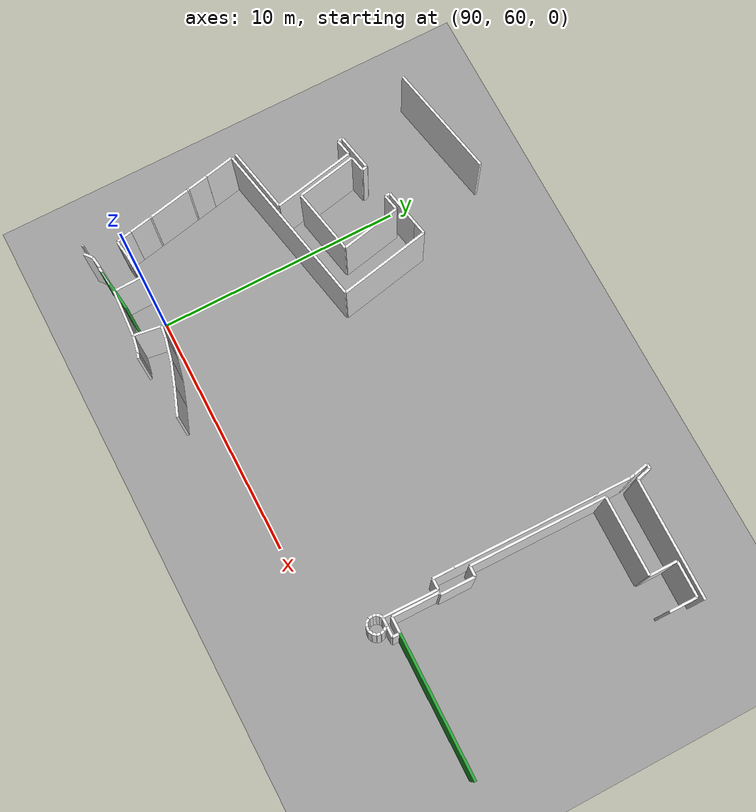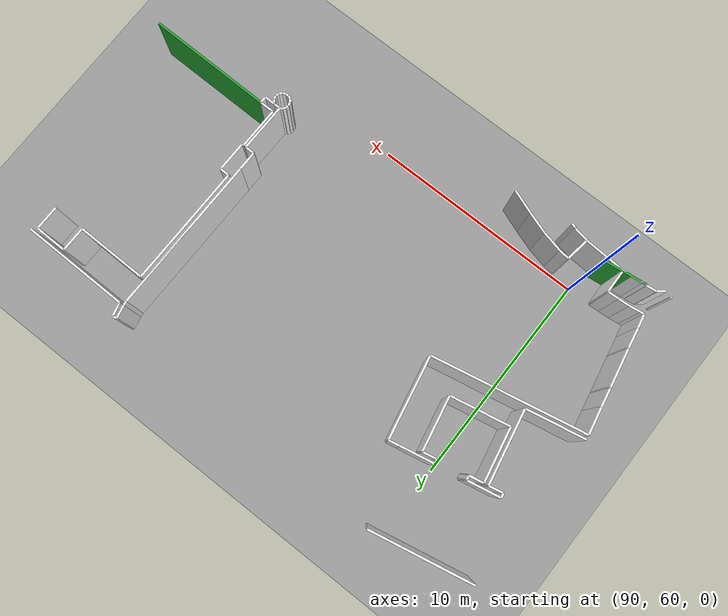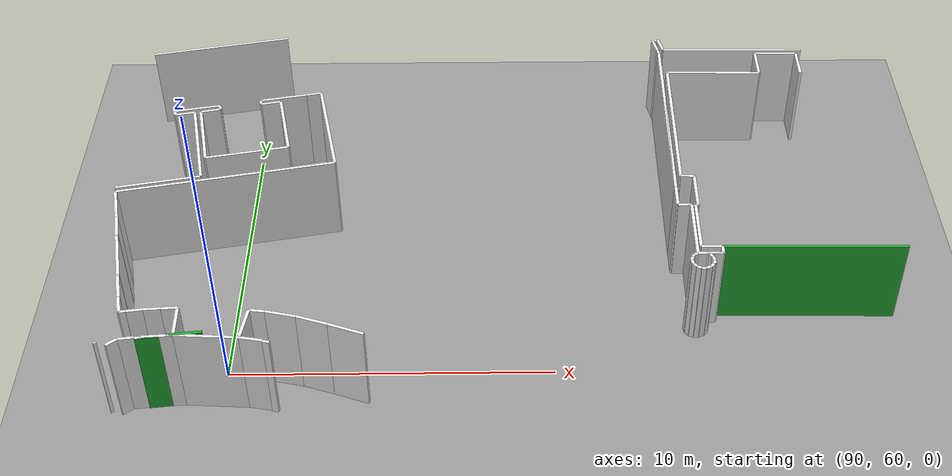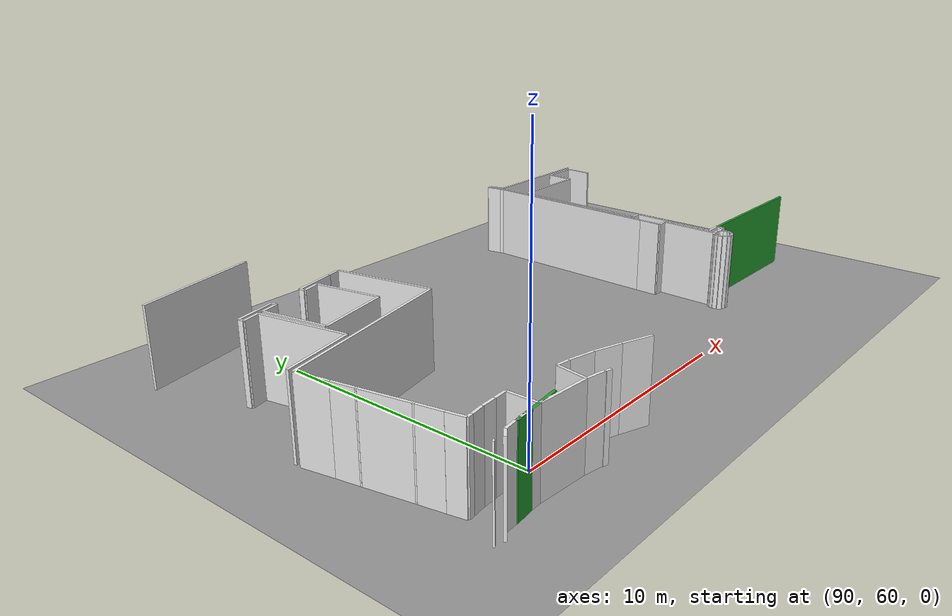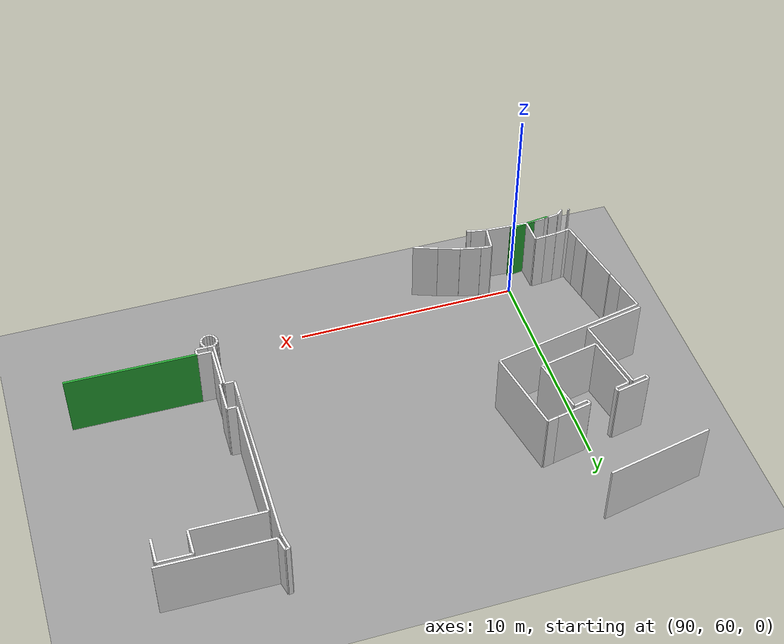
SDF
<sdf version="1.6">
 <world name="default">
  <model name="wall_108.0_62.3_1.5">
   <static>true</static>
   <pose>107.99499999999534 62.34499999997206 1.5 0 0 -0.012258580285916719</pose>
   <link name="link">
    <visual name="visual">
     <geometry><box><size>5.710429055644689 0.1 3</size></box></geometry>
     <material>
      <script><uri>file://media/materials/scripts/gazebo.material</uri><name>Gazebo/Green</name></script>
     </material>
    </visual>
    <collision name="collision"><geometry><box><size>5.710429055644689 0.1 3</size></box></geometry></collision>
   </link>
  </model>
  <model name="wall_88.8_58.8_1.5">
   <static>true</static>
   <pose>88.77500000008149 58.84499999997206 1.5 0 0 0.11984180789177595</pose>
   <link name="link">
    <visual name="visual">
     <geometry><box><size>1.9237983263743257 0.1 3</size></box></geometry>
     <material>
      <script><uri>file://media/materials/scripts/gazebo.material</uri><name>Gazebo/Green</name></script>
     </material>
    </visual>
    <collision name="collision"><geometry><box><size>1.9237983263743257 0.1 3</size></box></geometry></collision>
   </link>
  </model>
  <model name="wall_104.2_72.9_1.5">
   <static>true</static>
   <pose>104.17999999999302 72.9000000001397 1.5 0 0 -1.3415643935301684</pose>
   <link name="link">
    <visual name="visual">
     <geometry><box><size>0.6161168721238449 0.1 3</size></box></geometry>
     <material>
      <script><uri>file://media/materials/scripts/gazebo.material</uri><name>Gazebo/White</name></script>
     </material>
    </visual>
    <collision name="collision"><geometry><box><size>0.6161168721238449 0.1 3</size></box></geometry></collision>
   </link>
  </model>
  <model name="wall_106.7_72.6_1.5">
   <static>true</static>
   <pose>106.70000000001164 72.56499999994412 1.5 0 0 -0.01428474264813742</pose>
   <link name="link">
    <visual name="visual">
     <geometry><box><size>4.900499974519937 0.1 3</size></box></geometry>
     <material>
      <script><uri>file://media/materials/scripts/gazebo.material</uri><name>Gazebo/White</name></script>
     </material>
    </visual>
    <collision name="collision"><geometry><box><size>4.900499974519937 0.1 3</size></box></geometry></collision>
   </link>
  </model>
  <model name="wall_87.8_69.1_1.5">
   <static>true</static>
   <pose>87.75 69.11499999999069 1.5 0 0 -2.9411940992371117</pose>
   <link name="link">
    <visual name="visual">
     <geometry><box><size>0.653069674774366 0.1 3</size></box></geometry>
     <material>
      <script><uri>file://media/materials/scripts/gazebo.material</uri><name>Gazebo/White</name></script>
     </material>
    </visual>
    <collision name="collision"><geometry><box><size>0.653069674774366 0.1 3</size></box></geometry></collision>
   </link>
  </model>
  <model name="wall_87.4_65.6_1.5">
   <static>true</static>
   <pose>87.40499999999884 65.59000000008382 1.5 0 0 0.19376449375486982</pose>
   <link name="link">
    <visual name="visual">
     <geometry><box><size>2.70053698360794 0.1 3</size></box></geometry>
     <material>
      <script><uri>file://media/materials/scripts/gazebo.material</uri><name>Gazebo/White</name></script>
     </material>
    </visual>
    <collision name="collision"><geometry><box><size>2.70053698360794 0.1 3</size></box></geometry></collision>
   </link>
  </model>
  <model name="wall_88.4_67.5_1.5">
   <static>true</static>
   <pose>88.39999999999418 67.51500000013039 1.5 0 0 1.7664587861152812</pose>
   <link name="link">
    <visual name="visual">
     <geometry><box><size>3.394775397645977 0.1 3</size></box></geometry>
     <material>
      <script><uri>file://media/materials/scripts/gazebo.material</uri><name>Gazebo/White</name></script>
     </material>
    </visual>
    <collision name="collision"><geometry><box><size>3.394775397645977 0.1 3</size></box></geometry></collision>
   </link>
  </model>
  <model name="wall_108.9_71.8_1.5">
   <static>true</static>
   <pose>108.93499999999767 71.76000000000931 1.5 0 0 1.562024621943288</pose>
   <link name="link">
    <visual name="visual">
     <geometry><box><size>1.1400438589359028 0.1 3</size></box></geometry>
     <material>
      <script><uri>file://media/materials/scripts/gazebo.material</uri><name>Gazebo/White</name></script>
     </material>
    </visual>
    <collision name="collision"><geometry><box><size>1.1400438589359028 0.1 3</size></box></geometry></collision>
   </link>
  </model>
  <model name="wall_108.2_72.3_1.5">
   <static>true</static>
   <pose>108.21499999999651 72.34000000008382 1.5 0 0 3.127800424740227</pose>
   <link name="link">
    <visual name="visual">
     <geometry><box><size>1.4501379244866694 0.1 3</size></box></geometry>
     <material>
      <script><uri>file://media/materials/scripts/gazebo.material</uri><name>Gazebo/White</name></script>
     </material>
    </visual>
    <collision name="collision"><geometry><box><size>1.4501379244866694 0.1 3</size></box></geometry></collision>
   </link>
  </model>
  <model name="wall_107.5_71.8_1.5">
   <static>true</static>
   <pose>107.48499999998603 71.78000000002794 1.5 0 0 -1.579568031646505</pose>
   <link name="link">
    <visual name="visual">
     <geometry><box><size>1.1400438589359028 0.1 3</size></box></geometry>
     <material>
      <script><uri>file://media/materials/scripts/gazebo.material</uri><name>Gazebo/White</name></script>
     </material>
    </visual>
    <collision name="collision"><geometry><box><size>1.1400438589359028 0.1 3</size></box></geometry></collision>
   </link>
  </model>
  <model name="wall_105.9_71.2_1.5">
   <static>true</static>
   <pose>105.875 71.22999999998137 1.5 0 0 3.1291322393040306</pose>
   <link name="link">
    <visual name="visual">
     <geometry><box><size>3.2102492114731245 0.1 3</size></box></geometry>
     <material>
      <script><uri>file://media/materials/scripts/gazebo.material</uri><name>Gazebo/White</name></script>
     </material>
    </visual>
    <collision name="collision"><geometry><box><size>3.2102492114731245 0.1 3</size></box></geometry></collision>
   </link>
  </model>
  <model name="wall_104.2_68.5_1.5">
   <static>true</static>
   <pose>104.23000000001048 68.47500000009313 1.5 0 0 -1.585209743017202</pose>
   <link name="link">
    <visual name="visual">
     <geometry><box><size>5.550576546444078 0.1 3</size></box></geometry>
     <material>
      <script><uri>file://media/materials/scripts/gazebo.material</uri><name>Gazebo/White</name></script>
     </material>
    </visual>
    <collision name="collision"><geometry><box><size>5.550576546444078 0.1 3</size></box></geometry></collision>
   </link>
  </model>
  <model name="wall_104.4_65.7_1.5">
   <static>true</static>
   <pose>104.40499999999884 65.69500000006519 1.5 0 0 -0.023251623373661365</pose>
   <link name="link">
    <visual name="visual">
     <geometry><box><size>0.430116263350778 0.1 3</size></box></geometry>
     <material>
      <script><uri>file://media/materials/scripts/gazebo.material</uri><name>Gazebo/White</name></script>
     </material>
    </visual>
    <collision name="collision"><geometry><box><size>0.430116263350778 0.1 3</size></box></geometry></collision>
   </link>
  </model>
  <model name="wall_104.6_65.0_1.5">
   <static>true</static>
   <pose>104.60999999998603 64.99499999987893 1.5 0 0 -1.5851838231958704</pose>
   <link name="link">
    <visual name="visual">
     <geometry><box><size>1.390143877576424 0.1 3</size></box></geometry>
     <material>
      <script><uri>file://media/materials/scripts/gazebo.material</uri><name>Gazebo/White</name></script>
     </material>
    </visual>
    <collision name="collision"><geometry><box><size>1.390143877576424 0.1 3</size></box></geometry></collision>
   </link>
  </model>
  <model name="wall_104.6_64.3_1.5">
   <static>true</static>
   <pose>104.55999999999767 64.29999999981374 1.5 0 0 3.141592653589793</pose>
   <link name="link">
    <visual name="visual">
     <geometry><box><size>0.07999999995809048 0.1 3</size></box></geometry>
     <material>
      <script><uri>file://media/materials/scripts/gazebo.material</uri><name>Gazebo/White</name></script>
     </material>
    </visual>
    <collision name="collision"><geometry><box><size>0.07999999995809048 0.1 3</size></box></geometry></collision>
   </link>
  </model>
  <model name="wall_104.5_63.3_1.5">
   <static>true</static>
   <pose>104.50500000000466 63.34499999997206 1.5 0 0 -1.5865018416432637</pose>
   <link name="link">
    <visual name="visual">
     <geometry><box><size>1.9102355872488803 0.1 3</size></box></geometry>
     <material>
      <script><uri>file://media/materials/scripts/gazebo.material</uri><name>Gazebo/White</name></script>
     </material>
    </visual>
    <collision name="collision"><geometry><box><size>1.9102355872488803 0.1 3</size></box></geometry></collision>
   </link>
  </model>
  <model name="wall_104.8_62.4_1.5">
   <static>true</static>
   <pose>104.81500000000233 62.38500000000931 1.5 0 0 -0.015383402152485081</pose>
   <link name="link">
    <visual name="visual">
     <geometry><box><size>0.6500769185528055 0.1 3</size></box></geometry>
     <material>
      <script><uri>file://media/materials/scripts/gazebo.material</uri><name>Gazebo/White</name></script>
     </material>
    </visual>
    <collision name="collision"><geometry><box><size>0.6500769185528055 0.1 3</size></box></geometry></collision>
   </link>
  </model>
  <model name="wall_91.6_58.6_1.5">
   <static>true</static>
   <pose>91.61000000001513 58.55499999993481 1.5 0 0 2.896613989161817</pose>
   <link name="link">
    <visual name="visual">
     <geometry><box><size>0.20615528135994066 0.1 3</size></box></geometry>
     <material>
      <script><uri>file://media/materials/scripts/gazebo.material</uri><name>Gazebo/White</name></script>
     </material>
    </visual>
    <collision name="collision"><geometry><box><size>0.20615528135994066 0.1 3</size></box></geometry></collision>
   </link>
  </model>
  <model name="wall_91.5_58.6_1.5">
   <static>true</static>
   <pose>91.51500000001397 58.59000000008382 1.5 0 0 1.1071487177940904</pose>
   <link name="link">
    <visual name="visual">
     <geometry><box><size>0.022360679795822902 0.1 3</size></box></geometry>
     <material>
      <script><uri>file://media/materials/scripts/gazebo.material</uri><name>Gazebo/White</name></script>
     </material>
    </visual>
    <collision name="collision">
     <geometry><box><size>0.022360679795822902 0.1 3</size></box></geometry>
    </collision>
   </link>
  </model>
  <model name="wall_91.2_58.7_1.5">
   <static>true</static>
   <pose>91.16500000000815 58.66500000003725 1.5 0 0 2.960499997216104</pose>
   <link name="link">
    <visual name="visual">
     <geometry><box><size>0.7218032973052274 0.1 3</size></box></geometry>
     <material>
      <script><uri>file://media/materials/scripts/gazebo.material</uri><name>Gazebo/White</name></script>
     </material>
    </visual>
    <collision name="collision"><geometry><box><size>0.7218032973052274 0.1 3</size></box></geometry></collision>
   </link>
  </model>
  <model name="wall_89.9_58.8_1.5">
   <static>true</static>
   <pose>89.85999999998603 58.78499999991618 1.5 0 0 3.083762470913302</pose>
   <link name="link">
    <visual name="visual">
     <geometry><box><size>1.90318154679468 0.1 3</size></box></geometry>
     <material>
      <script><uri>file://media/materials/scripts/gazebo.material</uri><name>Gazebo/White</name></script>
     </material>
    </visual>
    <collision name="collision"><geometry><box><size>1.90318154679468 0.1 3</size></box></geometry></collision>
   </link>
  </model>
  <model name="wall_88.5_58.8_1.5">
   <static>true</static>
   <pose>88.45999999999185 58.80999999982305 1.5 0 0 -3.0750244897495804</pose>
   <link name="link">
    <visual name="visual">
     <geometry><box><size>0.9019977826712443 0.1 3</size></box></geometry>
     <material>
      <script><uri>file://media/materials/scripts/gazebo.material</uri><name>Gazebo/White</name></script>
     </material>
    </visual>
    <collision name="collision"><geometry><box><size>0.9019977826712443 0.1 3</size></box></geometry></collision>
   </link>
  </model>
  <model name="wall_88.0_58.8_1.5">
   <static>true</static>
   <pose>88.01500000001397 58.769999999785796 1.5 0 0 -1.1071487177940904</pose>
   <link name="link">
    <visual name="visual">
     <geometry><box><size>0.022360679795822902 0.1 3</size></box></geometry>
     <material>
      <script><uri>file://media/materials/scripts/gazebo.material</uri><name>Gazebo/White</name></script>
     </material>
    </visual>
    <collision name="collision">
     <geometry><box><size>0.022360679795822902 0.1 3</size></box></geometry>
    </collision>
   </link>
  </model>
  <model name="wall_87.9_58.7_1.5">
   <static>true</static>
   <pose>87.9200000000128 58.74499999987893 1.5 0 0 -2.992702706990747</pose>
   <link name="link">
    <visual name="visual">
     <geometry><box><size>0.20223748414268597 0.1 3</size></box></geometry>
     <material>
      <script><uri>file://media/materials/scripts/gazebo.material</uri><name>Gazebo/White</name></script>
     </material>
    </visual>
    <collision name="collision"><geometry><box><size>0.20223748414268597 0.1 3</size></box></geometry></collision>
   </link>
  </model>
  <model name="wall_86.7_58.6_1.5">
   <static>true</static>
   <pose>86.72500000000582 58.55499999993481 1.5 0 0 -1.0303768294346956</pose>
   <link name="link">
    <visual name="visual">
     <geometry><box><size>0.058309519172461015 0.1 3</size></box></geometry>
     <material>
      <script><uri>file://media/materials/scripts/gazebo.material</uri><name>Gazebo/White</name></script>
     </material>
    </visual>
    <collision name="collision">
     <geometry><box><size>0.058309519172461015 0.1 3</size></box></geometry>
    </collision>
   </link>
  </model>
  <model name="wall_87.2_58.6_1.5">
   <static>true</static>
   <pose>87.19000000000233 58.580000000074506 1.5 0 0 0.6747409426021391</pose>
   <link name="link">
    <visual name="visual">
     <geometry><box><size>0.38418745442196317 0.1 3</size></box></geometry>
     <material>
      <script><uri>file://media/materials/scripts/gazebo.material</uri><name>Gazebo/White</name></script>
     </material>
    </visual>
    <collision name="collision"><geometry><box><size>0.38418745442196317 0.1 3</size></box></geometry></collision>
   </link>
  </model>
  <model name="wall_87.6_58.7_1.5">
   <static>true</static>
   <pose>87.57500000001164 58.72999999998137 1.5 0 0 0.12697278876365076</pose>
   <link name="link">
    <visual name="visual">
     <geometry><box><size>0.4738143095396791 0.1 3</size></box></geometry>
     <material>
      <script><uri>file://media/materials/scripts/gazebo.material</uri><name>Gazebo/White</name></script>
     </material>
    </visual>
    <collision name="collision"><geometry><box><size>0.4738143095396791 0.1 3</size></box></geometry></collision>
   </link>
  </model>
  <model name="wall_87.8_58.7_1.5">
   <static>true</static>
   <pose>87.81500000000233 58.74499999987893 1.5 0 0 -1.249045770069948</pose>
   <link name="link">
    <visual name="visual">
     <geometry><box><size>0.031622776410252254 0.1 3</size></box></geometry>
     <material>
      <script><uri>file://media/materials/scripts/gazebo.material</uri><name>Gazebo/White</name></script>
     </material>
    </visual>
    <collision name="collision">
     <geometry><box><size>0.031622776410252254 0.1 3</size></box></geometry>
    </collision>
   </link>
  </model>
  <model name="wall_88.5_68.0_1.5">
   <static>true</static>
   <pose>88.51000000000931 67.99499999987893 1.5 0 0 -1.3757760594104678</pose>
   <link name="link">
    <visual name="visual">
     <geometry><box><size>2.4769537744570123 0.1 3</size></box></geometry>
     <material>
      <script><uri>file://media/materials/scripts/gazebo.material</uri><name>Gazebo/White</name></script>
     </material>
    </visual>
    <collision name="collision"><geometry><box><size>2.4769537744570123 0.1 3</size></box></geometry></collision>
   </link>
  </model>
  <model name="wall_90.1_67.0_1.5">
   <static>true</static>
   <pose>90.0799999999872 67.03999999980442 1.5 0 0 0.19305405312718568</pose>
   <link name="link">
    <visual name="visual">
     <geometry><box><size>2.710350530813887 0.1 3</size></box></geometry>
     <material>
      <script><uri>file://media/materials/scripts/gazebo.material</uri><name>Gazebo/White</name></script>
     </material>
    </visual>
    <collision name="collision"><geometry><box><size>2.710350530813887 0.1 3</size></box></geometry></collision>
   </link>
  </model>
  <model name="wall_91.2_68.5_1.5">
   <static>true</static>
   <pose>91.16499999997905 68.52000000001863 1.5 0 0 1.7689799085101925</pose>
   <link name="link">
    <visual name="visual">
     <geometry><box><size>2.4887145280225713 0.1 3</size></box></geometry>
     <material>
      <script><uri>file://media/materials/scripts/gazebo.material</uri><name>Gazebo/White</name></script>
     </material>
    </visual>
    <collision name="collision"><geometry><box><size>2.4887145280225713 0.1 3</size></box></geometry></collision>
   </link>
  </model>
  <model name="wall_90.6_69.7_1.5">
   <static>true</static>
   <pose>90.60000000000582 69.67500000004657 1.5 0 0 -2.9411940992193695</pose>
   <link name="link">
    <visual name="visual">
     <geometry><box><size>0.6530696747173231 0.1 3</size></box></geometry>
     <material>
      <script><uri>file://media/materials/scripts/gazebo.material</uri><name>Gazebo/White</name></script>
     </material>
    </visual>
    <collision name="collision"><geometry><box><size>0.6530696747173231 0.1 3</size></box></geometry></collision>
   </link>
  </model>
  <model name="wall_88.6_69.3_1.5">
   <static>true</static>
   <pose>88.58999999999651 69.27499999990687 1.5 0 0 -2.9411940999181345</pose>
   <link name="link">
    <visual name="visual">
     <geometry><box><size>0.6530696746246286 0.1 3</size></box></geometry>
     <material>
      <script><uri>file://media/materials/scripts/gazebo.material</uri><name>Gazebo/White</name></script>
     </material>
    </visual>
    <collision name="collision"><geometry><box><size>0.6530696746246286 0.1 3</size></box></geometry></collision>
   </link>
  </model>
  <model name="wall_93.9_59.0_1.5">
   <static>true</static>
   <pose>93.85500000001048 59.03000000002794 1.5 0 0 2.783846573203131</pose>
   <link name="link">
    <visual name="visual">
     <geometry><box><size>1.142322196204049 0.1 3</size></box></geometry>
     <material>
      <script><uri>file://media/materials/scripts/gazebo.material</uri><name>Gazebo/White</name></script>
     </material>
    </visual>
    <collision name="collision"><geometry><box><size>1.142322196204049 0.1 3</size></box></geometry></collision>
   </link>
  </model>
  <model name="wall_92.8_59.4_1.5">
   <static>true</static>
   <pose>92.84500000000116 59.389999999897555 1.5 0 0 2.816687535686861</pose>
   <link name="link">
    <visual name="visual">
     <geometry><box><size>1.0024470060381399 0.1 3</size></box></geometry>
     <material>
      <script><uri>file://media/materials/scripts/gazebo.material</uri><name>Gazebo/White</name></script>
     </material>
    </visual>
    <collision name="collision"><geometry><box><size>1.0024470060381399 0.1 3</size></box></geometry></collision>
   </link>
  </model>
  <model name="wall_91.9_59.7_1.5">
   <static>true</static>
   <pose>91.91000000000349 59.65499999979511 1.5 0 0 2.917176644587291</pose>
   <link name="link">
    <visual name="visual">
     <geometry><box><size>0.9436630754429067 0.1 3</size></box></geometry>
     <material>
      <script><uri>file://media/materials/scripts/gazebo.material</uri><name>Gazebo/White</name></script>
     </material>
    </visual>
    <collision name="collision"><geometry><box><size>0.9436630754429067 0.1 3</size></box></geometry></collision>
   </link>
  </model>
  <model name="wall_91.2_59.8_1.5">
   <static>true</static>
   <pose>91.20999999999185 59.78999999980442 1.5 0 0 3.0172376589385563</pose>
   <link name="link">
    <visual name="visual">
     <geometry><box><size>0.4837354649441195 0.1 3</size></box></geometry>
     <material>
      <script><uri>file://media/materials/scripts/gazebo.material</uri><name>Gazebo/White</name></script>
     </material>
    </visual>
    <collision name="collision"><geometry><box><size>0.4837354649441195 0.1 3</size></box></geometry></collision>
   </link>
  </model>
  <model name="wall_90.9_59.3_1.5">
   <static>true</static>
   <pose>90.88999999998487 59.27499999990687 1.5 0 0 -1.7165444534999768</pose>
   <link name="link">
    <visual name="visual">
     <geometry><box><size>1.1016805343051854 0.1 3</size></box></geometry>
     <material>
      <script><uri>file://media/materials/scripts/gazebo.material</uri><name>Gazebo/White</name></script>
     </material>
    </visual>
    <collision name="collision"><geometry><box><size>1.1016805343051854 0.1 3</size></box></geometry></collision>
   </link>
  </model>
  <model name="wall_88.9_59.4_1.5">
   <static>true</static>
   <pose>88.89499999998952 59.389999999897555 1.5 0 0 1.5980622952206878</pose>
   <link name="link">
    <visual name="visual">
     <geometry><box><size>1.1004090149590173 0.1 3</size></box></geometry>
     <material>
      <script><uri>file://media/materials/scripts/gazebo.material</uri><name>Gazebo/White</name></script>
     </material>
    </visual>
    <collision name="collision"><geometry><box><size>1.1004090149590173 0.1 3</size></box></geometry></collision>
   </link>
  </model>
  <model name="wall_88.6_59.9_1.5">
   <static>true</static>
   <pose>88.63500000000931 59.925000000046566 1.5 0 0 -3.080444491355916</pose>
   <link name="link">
    <visual name="visual">
     <geometry><box><size>0.4909175083235264 0.1 3</size></box></geometry>
     <material>
      <script><uri>file://media/materials/scripts/gazebo.material</uri><name>Gazebo/White</name></script>
     </material>
    </visual>
    <collision name="collision"><geometry><box><size>0.4909175083235264 0.1 3</size></box></geometry></collision>
   </link>
  </model>
  <model name="wall_88.1_59.9_1.5">
   <static>true</static>
   <pose>88.13500000000931 59.89500000001863 1.5 0 0 -3.08283683036559</pose>
   <link name="link">
    <visual name="visual">
     <geometry><box><size>0.5108815910024022 0.1 3</size></box></geometry>
     <material>
      <script><uri>file://media/materials/scripts/gazebo.material</uri><name>Gazebo/White</name></script>
     </material>
    </visual>
    <collision name="collision"><geometry><box><size>0.5108815910024022 0.1 3</size></box></geometry></collision>
   </link>
  </model>
  <model name="wall_87.6_59.8_1.5">
   <static>true</static>
   <pose>87.63500000000931 59.84499999997206 1.5 0 0 -2.9996955993182444</pose>
   <link name="link">
    <visual name="visual">
     <geometry><box><size>0.494974746797656 0.1 3</size></box></geometry>
     <material>
      <script><uri>file://media/materials/scripts/gazebo.material</uri><name>Gazebo/White</name></script>
     </material>
    </visual>
    <collision name="collision"><geometry><box><size>0.494974746797656 0.1 3</size></box></geometry></collision>
   </link>
  </model>
  <model name="wall_87.3_59.8_1.5">
   <static>true</static>
   <pose>87.29000000000815 59.800000000046566 1.5 0 0 -3.0419240010121844</pose>
   <link name="link">
    <visual name="visual">
     <geometry><box><size>0.20099751243585498 0.1 3</size></box></geometry>
     <material>
      <script><uri>file://media/materials/scripts/gazebo.material</uri><name>Gazebo/White</name></script>
     </material>
    </visual>
    <collision name="collision"><geometry><box><size>0.20099751243585498 0.1 3</size></box></geometry></collision>
   </link>
  </model>
  <model name="wall_87.1_60.1_1.5">
   <static>true</static>
   <pose>87.125 60.10000000009313 1.5 0 0 1.7774795452501364</pose>
   <link name="link">
    <visual name="visual">
     <geometry><box><size>0.6334824386988099 0.1 3</size></box></geometry>
     <material>
      <script><uri>file://media/materials/scripts/gazebo.material</uri><name>Gazebo/White</name></script>
     </material>
    </visual>
    <collision name="collision"><geometry><box><size>0.6334824386988099 0.1 3</size></box></geometry></collision>
   </link>
  </model>
  <model name="wall_87.0_60.9_1.5">
   <static>true</static>
   <pose>86.97500000000582 60.85000000009313 1.5 0 0 1.7616274295219554</pose>
   <link name="link">
    <visual name="visual">
     <geometry><box><size>0.896270048477446 0.1 3</size></box></geometry>
     <material>
      <script><uri>file://media/materials/scripts/gazebo.material</uri><name>Gazebo/White</name></script>
     </material>
    </visual>
    <collision name="collision"><geometry><box><size>0.896270048477446 0.1 3</size></box></geometry></collision>
   </link>
  </model>
  <model name="wall_86.9_61.3_1.5">
   <static>true</static>
   <pose>86.88500000000931 61.32000000006519 1.5 0 0 1.7359450042095235</pose>
   <link name="link">
    <visual name="visual">
     <geometry><box><size>0.060827625359632334 0.1 3</size></box></geometry>
     <material>
      <script><uri>file://media/materials/scripts/gazebo.material</uri><name>Gazebo/White</name></script>
     </material>
    </visual>
    <collision name="collision">
     <geometry><box><size>0.060827625359632334 0.1 3</size></box></geometry>
    </collision>
   </link>
  </model>
  <model name="wall_86.7_62.2_1.5">
   <static>true</static>
   <pose>86.70999999999185 62.19500000006519 1.5 0 0 1.7693295426026865</pose>
   <link name="link">
    <visual name="visual">
     <geometry><box><size>1.7238619433784548 0.1 3</size></box></geometry>
     <material>
      <script><uri>file://media/materials/scripts/gazebo.material</uri><name>Gazebo/White</name></script>
     </material>
    </visual>
    <collision name="collision"><geometry><box><size>1.7238619433784548 0.1 3</size></box></geometry></collision>
   </link>
  </model>
  <model name="wall_86.5_63.1_1.5">
   <static>true</static>
   <pose>86.53500000000349 63.07000000006519 1.5 0 0 1.7359450032656154</pose>
   <link name="link">
    <visual name="visual">
     <geometry><box><size>0.06082762535006306 0.1 3</size></box></geometry>
     <material>
      <script><uri>file://media/materials/scripts/gazebo.material</uri><name>Gazebo/White</name></script>
     </material>
    </visual>
    <collision name="collision"><geometry><box><size>0.06082762535006306 0.1 3</size></box></geometry></collision>
   </link>
  </model>
  <model name="wall_86.5_63.5_1.5">
   <static>true</static>
   <pose>86.45000000001164 63.51000000000931 1.5 0 0 1.7634970855340029</pose>
   <link name="link">
    <visual name="visual">
     <geometry><box><size>0.8354639428099243 0.1 3</size></box></geometry>
     <material>
      <script><uri>file://media/materials/scripts/gazebo.material</uri><name>Gazebo/White</name></script>
     </material>
    </visual>
    <collision name="collision"><geometry><box><size>0.8354639428099243 0.1 3</size></box></geometry></collision>
   </link>
  </model>
  <model name="wall_86.2_64.5_1.5">
   <static>true</static>
   <pose>86.24499999999534 64.52499999990687 1.5 0 0 1.7745410076848542</pose>
   <link name="link">
    <visual name="visual">
     <geometry><box><size>1.2355565547193088 0.1 3</size></box></geometry>
     <material>
      <script><uri>file://media/materials/scripts/gazebo.material</uri><name>Gazebo/White</name></script>
     </material>
    </visual>
    <collision name="collision"><geometry><box><size>1.2355565547193088 0.1 3</size></box></geometry></collision>
   </link>
  </model>
  <model name="wall_89.6_65.8_1.5">
   <static>true</static>
   <pose>89.55999999999767 65.81000000005588 1.5 0 0 0.19515842716344076</pose>
   <link name="link">
    <visual name="visual">
     <geometry><box><size>7.013130542131383 0.1 3</size></box></geometry>
     <material>
      <script><uri>file://media/materials/scripts/gazebo.material</uri><name>Gazebo/White</name></script>
     </material>
    </visual>
    <collision name="collision"><geometry><box><size>7.013130542131383 0.1 3</size></box></geometry></collision>
   </link>
  </model>
  <model name="wall_92.6_68.4_1.5">
   <static>true</static>
   <pose>92.63000000000466 68.35000000009313 1.5 0 0 1.767157760861028</pose>
   <link name="link">
    <visual name="visual">
     <geometry><box><size>3.7928880814026247 0.1 3</size></box></geometry>
     <material>
      <script><uri>file://media/materials/scripts/gazebo.material</uri><name>Gazebo/White</name></script>
     </material>
    </visual>
    <collision name="collision"><geometry><box><size>3.7928880814026247 0.1 3</size></box></geometry></collision>
   </link>
  </model>
  <model name="wall_92.0_70.2_1.5">
   <static>true</static>
   <pose>92.01500000001397 70.15999999991618 1.5 0 0 -2.9402755450289626</pose>
   <link name="link">
    <visual name="visual">
     <geometry><box><size>0.5000999900114971 0.1 3</size></box></geometry>
     <material>
      <script><uri>file://media/materials/scripts/gazebo.material</uri><name>Gazebo/White</name></script>
     </material>
    </visual>
    <collision name="collision"><geometry><box><size>0.5000999900114971 0.1 3</size></box></geometry></collision>
   </link>
  </model>
  <model name="wall_91.0_70.0_1.5">
   <static>true</static>
   <pose>91.00500000000466 69.95999999996275 1.5 0 0 -2.94797066085453</pose>
   <link name="link">
    <visual name="visual">
     <geometry><box><size>1.5591343752139315 0.1 3</size></box></geometry>
     <material>
      <script><uri>file://media/materials/scripts/gazebo.material</uri><name>Gazebo/White</name></script>
     </material>
    </visual>
    <collision name="collision"><geometry><box><size>1.5591343752139315 0.1 3</size></box></geometry></collision>
   </link>
  </model>
  <model name="wall_90.3_69.7_1.5">
   <static>true</static>
   <pose>90.26000000000931 69.70999999996275 1.5 0 0 -1.373400766945016</pose>
   <link name="link">
    <visual name="visual">
     <geometry><box><size>0.20396078073366466 0.1 3</size></box></geometry>
     <material>
      <script><uri>file://media/materials/scripts/gazebo.material</uri><name>Gazebo/White</name></script>
     </material>
    </visual>
    <collision name="collision"><geometry><box><size>0.20396078073366466 0.1 3</size></box></geometry></collision>
   </link>
  </model>
  <model name="wall_88.9_69.4_1.5">
   <static>true</static>
   <pose>88.88999999998487 69.43999999994412 1.5 0 0 1.7681918863649329</pose>
   <link name="link">
    <visual name="visual">
     <geometry><box><size>0.2039607807222492 0.1 3</size></box></geometry>
     <material>
      <script><uri>file://media/materials/scripts/gazebo.material</uri><name>Gazebo/White</name></script>
     </material>
    </visual>
    <collision name="collision"><geometry><box><size>0.2039607807222492 0.1 3</size></box></geometry></collision>
   </link>
  </model>
  <model name="wall_88.1_69.4_1.5">
   <static>true</static>
   <pose>88.13000000000466 69.39500000001863 1.5 0 0 -2.948098244273777</pose>
   <link name="link">
    <visual name="visual">
     <geometry><box><size>1.508144555394632 0.1 3</size></box></geometry>
     <material>
      <script><uri>file://media/materials/scripts/gazebo.material</uri><name>Gazebo/White</name></script>
     </material>
    </visual>
    <collision name="collision"><geometry><box><size>1.508144555394632 0.1 3</size></box></geometry></collision>
   </link>
  </model>
  <model name="wall_87.4_69.1_1.5">
   <static>true</static>
   <pose>87.41000000000349 69.14999999990687 1.5 0 0 -1.3734007672248605</pose>
   <link name="link">
    <visual name="visual">
     <geometry><box><size>0.2039607807222492 0.1 3</size></box></geometry>
     <material>
      <script><uri>file://media/materials/scripts/gazebo.material</uri><name>Gazebo/White</name></script>
     </material>
    </visual>
    <collision name="collision"><geometry><box><size>0.2039607807222492 0.1 3</size></box></geometry></collision>
   </link>
  </model>
  <model name="wall_88.5_73.0_1.5">
   <static>true</static>
   <pose>88.48999999999069 72.98999999999069 1.5 0 0 0.19656292065681916</pose>
   <link name="link">
    <visual name="visual">
     <geometry><box><size>4.710711199031065 0.1 3</size></box></geometry>
     <material>
      <script><uri>file://media/materials/scripts/gazebo.material</uri><name>Gazebo/White</name></script>
     </material>
    </visual>
    <collision name="collision"><geometry><box><size>4.710711199031065 0.1 3</size></box></geometry></collision>
   </link>
  </model>
  <model name="wall_104.0_73.2_1.5">
   <static>true</static>
   <pose>104.01999999998952 73.18500000005588 1.5 0 0 -2.9764439747593046</pose>
   <link name="link">
    <visual name="visual">
     <geometry><box><size>0.18248287594492707 0.1 3</size></box></geometry>
     <material>
      <script><uri>file://media/materials/scripts/gazebo.material</uri><name>Gazebo/White</name></script>
     </material>
    </visual>
    <collision name="collision"><geometry><box><size>0.18248287594492707 0.1 3</size></box></geometry></collision>
   </link>
  </model>
  <model name="wall_104.0_72.9_1.5">
   <static>true</static>
   <pose>103.98999999999069 72.875 1.5 0 0 -1.3701434494332612</pose>
   <link name="link">
    <visual name="visual">
     <geometry><box><size>0.6020797287926647 0.1 3</size></box></geometry>
     <material>
      <script><uri>file://media/materials/scripts/gazebo.material</uri><name>Gazebo/White</name></script>
     </material>
    </visual>
    <collision name="collision"><geometry><box><size>0.6020797287926647 0.1 3</size></box></geometry></collision>
   </link>
  </model>
  <model name="wall_104.1_72.5_1.5">
   <static>true</static>
   <pose>104.06500000000233 72.48500000010245 1.5 0 0 -1.4141944496240997</pose>
   <link name="link">
    <visual name="visual">
     <geometry><box><size>0.19235384056587543 0.1 3</size></box></geometry>
     <material>
      <script><uri>file://media/materials/scripts/gazebo.material</uri><name>Gazebo/White</name></script>
     </material>
    </visual>
    <collision name="collision"><geometry><box><size>0.19235384056587543 0.1 3</size></box></geometry></collision>
   </link>
  </model>
  <model name="wall_104.0_68.8_1.5">
   <static>true</static>
   <pose>104.02999999999884 68.78500000014901 1.5 0 0 -1.5846650630720618</pose>
   <link name="link">
    <visual name="visual">
     <geometry><box><size>7.2106934478918046 0.1 3</size></box></geometry>
     <material>
      <script><uri>file://media/materials/scripts/gazebo.material</uri><name>Gazebo/White</name></script>
     </material>
    </visual>
    <collision name="collision"><geometry><box><size>7.2106934478918046 0.1 3</size></box></geometry></collision>
   </link>
  </model>
  <model name="wall_104.0_64.7_1.5">
   <static>true</static>
   <pose>103.97499999997672 64.74500000011176 1.5 0 0 -1.5822900735191543</pose>
   <link name="link">
    <visual name="visual">
     <geometry><box><size>0.8700574694781066 0.1 3</size></box></geometry>
     <material>
      <script><uri>file://media/materials/scripts/gazebo.material</uri><name>Gazebo/White</name></script>
     </material>
    </visual>
    <collision name="collision"><geometry><box><size>0.8700574694781066 0.1 3</size></box></geometry></collision>
   </link>
  </model>
  <model name="wall_104.2_64.3_1.5">
   <static>true</static>
   <pose>104.18499999999767 64.31000000005588 1.5 0 0 0.0</pose>
   <link name="link">
    <visual name="visual">
     <geometry><box><size>0.43000000005122274 0.1 3</size></box></geometry>
     <material>
      <script><uri>file://media/materials/scripts/gazebo.material</uri><name>Gazebo/White</name></script>
     </material>
    </visual>
    <collision name="collision"><geometry><box><size>0.43000000005122274 0.1 3</size></box></geometry></collision>
   </link>
  </model>
  <model name="wall_104.4_63.2_1.5">
   <static>true</static>
   <pose>104.38000000000466 63.199999999953434 1.5 0 0 -1.5888123953640647</pose>
   <link name="link">
    <visual name="visual">
     <geometry><box><size>2.2203603313229805 0.1 3</size></box></geometry>
     <material>
      <script><uri>file://media/materials/scripts/gazebo.material</uri><name>Gazebo/White</name></script>
     </material>
    </visual>
    <collision name="collision"><geometry><box><size>2.2203603313229805 0.1 3</size></box></geometry></collision>
   </link>
  </model>
  <model name="wall_104.3_62.1_1.5">
   <static>true</static>
   <pose>104.30499999999302 62.05999999982305 1.5 0 0 -2.642245931464764</pose>
   <link name="link">
    <visual name="visual">
     <geometry><box><size>0.12529964087591056 0.1 3</size></box></geometry>
     <material>
      <script><uri>file://media/materials/scripts/gazebo.material</uri><name>Gazebo/White</name></script>
     </material>
    </visual>
    <collision name="collision"><geometry><box><size>0.12529964087591056 0.1 3</size></box></geometry></collision>
   </link>
  </model>
  <model name="wall_104.2_62.0_1.5">
   <static>true</static>
   <pose>104.20999999999185 61.9749999998603 1.5 0 0 -2.199592613871065</pose>
   <link name="link">
    <visual name="visual">
     <geometry><box><size>0.13601470499149335 0.1 3</size></box></geometry>
     <material>
      <script><uri>file://media/materials/scripts/gazebo.material</uri><name>Gazebo/White</name></script>
     </material>
    </visual>
    <collision name="collision"><geometry><box><size>0.13601470499149335 0.1 3</size></box></geometry></collision>
   </link>
  </model>
  <model name="wall_104.2_61.9_1.5">
   <static>true</static>
   <pose>104.15499999999884 61.85499999998137 1.5 0 0 -1.7975951748160817</pose>
   <link name="link">
    <visual name="visual">
     <geometry><box><size>0.13341664052556057 0.1 3</size></box></geometry>
     <material>
      <script><uri>file://media/materials/scripts/gazebo.material</uri><name>Gazebo/White</name></script>
     </material>
    </visual>
    <collision name="collision"><geometry><box><size>0.13341664052556057 0.1 3</size></box></geometry></collision>
   </link>
  </model>
  <model name="wall_104.2_61.7_1.5">
   <static>true</static>
   <pose>104.15499999999884 61.70999999996275 1.5 0 0 -1.3854483771506443</pose>
   <link name="link">
    <visual name="visual">
     <geometry><box><size>0.16278820610187839 0.1 3</size></box></geometry>
     <material>
      <script><uri>file://media/materials/scripts/gazebo.material</uri><name>Gazebo/White</name></script>
     </material>
    </visual>
    <collision name="collision"><geometry><box><size>0.16278820610187839 0.1 3</size></box></geometry></collision>
   </link>
  </model>
  <model name="wall_104.2_61.6_1.5">
   <static>true</static>
   <pose>104.22000000000116 61.56499999994412 1.5 0 0 -0.9151006999691199</pose>
   <link name="link">
    <visual name="visual">
     <geometry><box><size>0.16401219460127853 0.1 3</size></box></geometry>
     <material>
      <script><uri>file://media/materials/scripts/gazebo.material</uri><name>Gazebo/White</name></script>
     </material>
    </visual>
    <collision name="collision"><geometry><box><size>0.16401219460127853 0.1 3</size></box></geometry></collision>
   </link>
  </model>
  <model name="wall_104.3_61.5_1.5">
   <static>true</static>
   <pose>104.33500000002095 61.46999999997206 1.5 0 0 -0.4324077759112656</pose>
   <link name="link">
    <visual name="visual">
     <geometry><box><size>0.14317821066040826 0.1 3</size></box></geometry>
     <material>
      <script><uri>file://media/materials/scripts/gazebo.material</uri><name>Gazebo/White</name></script>
     </material>
    </visual>
    <collision name="collision"><geometry><box><size>0.14317821066040826 0.1 3</size></box></geometry></collision>
   </link>
  </model>
  <model name="wall_104.5_61.4_1.5">
   <static>true</static>
   <pose>104.47000000000116 61.43500000005588 1.5 0 0 -0.07130746321929742</pose>
   <link name="link">
    <visual name="visual">
     <geometry><box><size>0.14035668841613164 0.1 3</size></box></geometry>
     <material>
      <script><uri>file://media/materials/scripts/gazebo.material</uri><name>Gazebo/White</name></script>
     </material>
    </visual>
    <collision name="collision"><geometry><box><size>0.14035668841613164 0.1 3</size></box></geometry></collision>
   </link>
  </model>
  <model name="wall_104.6_61.5_1.5">
   <static>true</static>
   <pose>104.61999999999534 61.46500000008382 1.5 0 0 0.41241044064316335</pose>
   <link name="link">
    <visual name="visual">
     <geometry><box><size>0.17464249192840064 0.1 3</size></box></geometry>
     <material>
      <script><uri>file://media/materials/scripts/gazebo.material</uri><name>Gazebo/White</name></script>
     </material>
    </visual>
    <collision name="collision"><geometry><box><size>0.17464249192840064 0.1 3</size></box></geometry></collision>
   </link>
  </model>
  <model name="wall_104.8_61.6_1.5">
   <static>true</static>
   <pose>104.75 61.56000000005588 1.5 0 0 0.8760580511707278</pose>
   <link name="link">
    <visual name="visual">
     <geometry><box><size>0.15620499358908305 0.1 3</size></box></geometry>
     <material>
      <script><uri>file://media/materials/scripts/gazebo.material</uri><name>Gazebo/White</name></script>
     </material>
    </visual>
    <collision name="collision"><geometry><box><size>0.15620499358908305 0.1 3</size></box></geometry></collision>
   </link>
  </model>
  <model name="wall_104.8_61.7_1.5">
   <static>true</static>
   <pose>104.82000000000698 61.68999999994412 1.5 0 0 1.292496666911179</pose>
   <link name="link">
    <visual name="visual">
     <geometry><box><size>0.1456021974734685 0.1 3</size></box></geometry>
     <material>
      <script><uri>file://media/materials/scripts/gazebo.material</uri><name>Gazebo/White</name></script>
     </material>
    </visual>
    <collision name="collision"><geometry><box><size>0.1456021974734685 0.1 3</size></box></geometry></collision>
   </link>
  </model>
  <model name="wall_104.8_61.8_1.5">
   <static>true</static>
   <pose>104.82000000000698 61.83999999985099 1.5 0 0 1.8157749899217608</pose>
   <link name="link">
    <visual name="visual">
     <geometry><box><size>0.16492422517830407 0.1 3</size></box></geometry>
     <material>
      <script><uri>file://media/materials/scripts/gazebo.material</uri><name>Gazebo/White</name></script>
     </material>
    </visual>
    <collision name="collision"><geometry><box><size>0.16492422517830407 0.1 3</size></box></geometry></collision>
   </link>
  </model>
  <model name="wall_104.8_62.0_1.5">
   <static>true</static>
   <pose>104.75500000000466 61.984999999869615 1.5 0 0 2.1763409906326974</pose>
   <link name="link">
    <visual name="visual">
     <geometry><box><size>0.1581138828979777 0.1 3</size></box></geometry>
     <material>
      <script><uri>file://media/materials/scripts/gazebo.material</uri><name>Gazebo/White</name></script>
     </material>
    </visual>
    <collision name="collision"><geometry><box><size>0.1581138828979777 0.1 3</size></box></geometry></collision>
   </link>
  </model>
  <model name="wall_104.7_62.1_1.5">
   <static>true</static>
   <pose>104.6700000000128 62.06999999983236 1.5 0 0 2.6779450442979487</pose>
   <link name="link">
    <visual name="visual">
     <geometry><box><size>0.0894427191312291 0.1 3</size></box></geometry>
     <material>
      <script><uri>file://media/materials/scripts/gazebo.material</uri><name>Gazebo/White</name></script>
     </material>
    </visual>
    <collision name="collision"><geometry><box><size>0.0894427191312291 0.1 3</size></box></geometry></collision>
   </link>
  </model>
  <model name="wall_104.9_62.1_1.5">
   <static>true</static>
   <pose>104.88500000000931 62.08499999996275 1.5 0 0 -0.01960533041874575</pose>
   <link name="link">
    <visual name="visual">
     <geometry><box><size>0.5100980297992036 0.1 3</size></box></geometry>
     <material>
      <script><uri>file://media/materials/scripts/gazebo.material</uri><name>Gazebo/White</name></script>
     </material>
    </visual>
    <collision name="collision"><geometry><box><size>0.5100980297992036 0.1 3</size></box></geometry></collision>
   </link>
  </model>
  <model name="wall_105.1_62.2_1.5">
   <static>true</static>
   <pose>105.14000000001397 62.22999999998137 1.5 0 0 1.5707963267948966</pose>
   <link name="link">
    <visual name="visual">
     <geometry><box><size>0.2999999998137355 0.1 3</size></box></geometry>
     <material>
      <script><uri>file://media/materials/scripts/gazebo.material</uri><name>Gazebo/White</name></script>
     </material>
    </visual>
    <collision name="collision"><geometry><box><size>0.2999999998137355 0.1 3</size></box></geometry></collision>
   </link>
  </model>
  <model name="wall_104.0_68.4_1.5">
   <static>true</static>
   <pose>104.02499999999418 68.35000000009313 1.5 0 0 -1.5844093472281489</pose>
   <link name="link">
    <visual name="visual">
     <geometry><box><size>8.080748727761168 0.1 3</size></box></geometry>
     <material>
      <script><uri>file://media/materials/scripts/gazebo.material</uri><name>Gazebo/White</name></script>
     </material>
    </visual>
    <collision name="collision"><geometry><box><size>8.080748727761168 0.1 3</size></box></geometry></collision>
   </link>
  </model>
  <model name="wall_104.8_62.1_1.5">
   <static>true</static>
   <pose>104.75 62.08499999996275 1.5 0 0 -0.012819810185927727</pose>
   <link name="link">
    <visual name="visual">
     <geometry><box><size>0.7800640999553278 0.1 3</size></box></geometry>
     <material>
      <script><uri>file://media/materials/scripts/gazebo.material</uri><name>Gazebo/White</name></script>
     </material>
    </visual>
    <collision name="collision"><geometry><box><size>0.7800640999553278 0.1 3</size></box></geometry></collision>
   </link>
  </model>
  <model name="ground_plane_floor_1">
   <static>1</static>
   <pose>100 60 0 0 0 0</pose>
   <link name="link">
    <collision name="collision">
     <geometry><plane><normal>0 0 1</normal><size>280 200</size></plane></geometry>
     <surface><friction><ode><mu>1.0</mu><mu2>1.0</mu2></ode></friction></surface>
    </collision>
    <visual name="visual">
     <cast_shadows>0</cast_shadows>
     <geometry><plane><normal>0 0 1</normal><size>340 200</size></plane></geometry>
     <material>
      <script>
       <uri>file://media/materials/scripts/gazebo.material</uri>
       <name>Gazebo/Grey</name>
       <ambient>1 1 1 1</ambient>
      </script>
     </material>
    </visual>
   </link>
  </model>
 </world>
</sdf>
